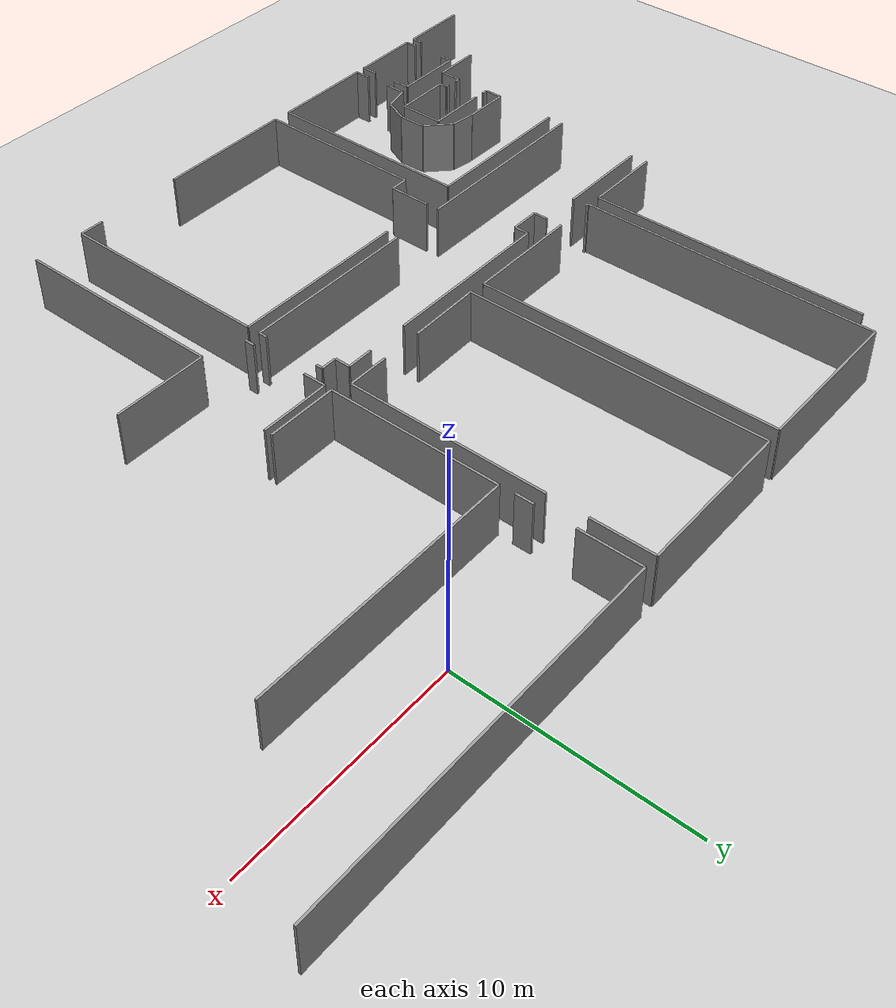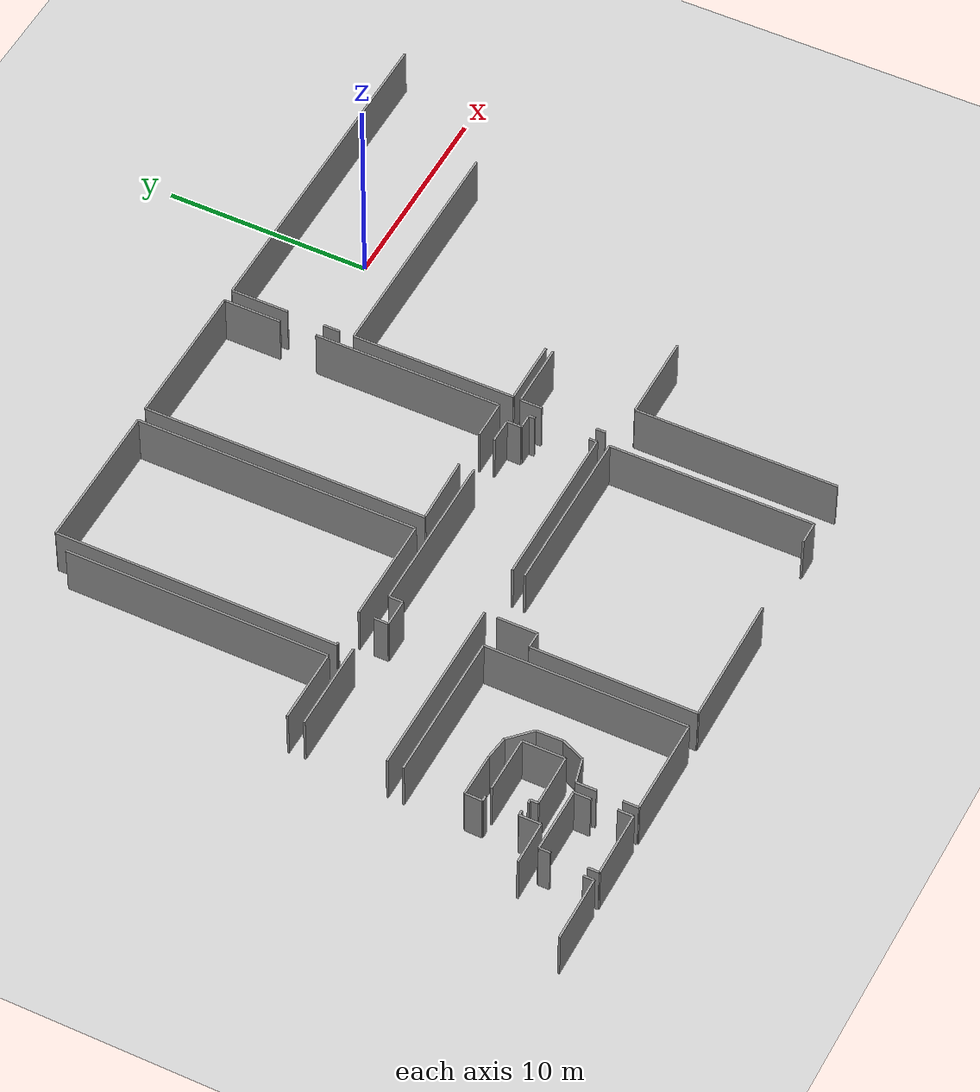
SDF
<sdf version="1.6">
 <world name="default">
  <model name="ground_plane">
   <static>1</static>
   <link name="link">
    <collision name="collision">
     <geometry><plane><normal>0 0 1</normal><size>100 100</size></plane></geometry>
     <surface><friction><ode><mu>100</mu><mu2>50</mu2></ode></friction></surface>
    </collision>
    <visual name="visual">
     <cast_shadows>0</cast_shadows>
     <geometry><plane><normal>0 0 1</normal><size>100 100</size></plane></geometry>
     <material>
      <script><uri>file://media/materials/scripts/gazebo.material</uri><name>Gazebo/Grey</name></script>
     </material>
    </visual>
   </link>
  </model>
  <model name="0510035342_A_40_1_101">
   <static>1</static>
   <link name="Wall_46">
    <collision name="Wall_46_Collision">
     <geometry><box><size>4.43487757797 0.1 2.5</size></box></geometry>
     <pose>2.21743878899 0 1.25 0 0 0</pose>
    </collision>
    <visual name="Wall_46_Visual">
     <pose>2.21743878899 0 1.25 0 0 0</pose>
     <geometry><box><size>4.43487757797 0.1 2.5</size></box></geometry>
     <material>
      <script><uri>file://media/materials/scripts/gazebo.material</uri><name>Gazebo/Grey</name></script>
      <ambient>1 1 1 1</ambient>
     </material>
    </visual>
    <pose>89.5682210708 -36.1292288936 0 0 0 0.0</pose>
   </link>
   <link name="Wall_47">
    <collision name="Wall_47_Collision">
     <geometry><box><size>0.667987402215 0.1 2.5</size></box></geometry>
     <pose>0.333993701107 0 1.25 0 0 0</pose>
    </collision>
    <visual name="Wall_47_Visual">
     <pose>0.333993701107 0 1.25 0 0 0</pose>
     <geometry><box><size>0.667987402215 0.1 2.5</size></box></geometry>
     <material>
      <script><uri>file://media/materials/scripts/gazebo.material</uri><name>Gazebo/Grey</name></script>
      <ambient>1 1 1 1</ambient>
     </material>
    </visual>
    <pose>95.8925124454 -36.1292288936 0 0 0 -1.57079632679</pose>
   </link>
   <link name="Wall_48">
    <collision name="Wall_48_Collision">
     <geometry><box><size>1.35223001118 0.1 2.5</size></box></geometry>
     <pose>0.676115005588 0 1.25 0 0 0</pose>
    </collision>
    <visual name="Wall_48_Visual">
     <pose>0.676115005588 0 1.25 0 0 0</pose>
     <geometry><box><size>1.35223001118 0.1 2.5</size></box></geometry>
     <material>
      <script><uri>file://media/materials/scripts/gazebo.material</uri><name>Gazebo/Grey</name></script>
      <ambient>1 1 1 1</ambient>
     </material>
    </visual>
    <pose>95.8925124454 -36.7972162958 0 0 0 0.0</pose>
   </link>
   <link name="Wall_49">
    <collision name="Wall_49_Collision">
     <geometry><box><size>0.667987402215 0.1 2.5</size></box></geometry>
     <pose>0.333993701107 0 1.25 0 0 0</pose>
    </collision>
    <visual name="Wall_49_Visual">
     <pose>0.333993701107 0 1.25 0 0 0</pose>
     <geometry><box><size>0.667987402215 0.1 2.5</size></box></geometry>
     <material>
      <script><uri>file://media/materials/scripts/gazebo.material</uri><name>Gazebo/Grey</name></script>
      <ambient>1 1 1 1</ambient>
     </material>
    </visual>
    <pose>97.2447424566 -36.7972162958 0 0 0 1.57079632679</pose>
   </link>
   <link name="Wall_50">
    <collision name="Wall_50_Collision">
     <geometry><box><size>7.99933963223 0.1 2.5</size></box></geometry>
     <pose>3.99966981611 0 1.25 0 0 0</pose>
    </collision>
    <visual name="Wall_50_Visual">
     <pose>3.99966981611 0 1.25 0 0 0</pose>
     <geometry><box><size>7.99933963223 0.1 2.5</size></box></geometry>
     <material>
      <script><uri>file://media/materials/scripts/gazebo.material</uri><name>Gazebo/Grey</name></script>
      <ambient>1 1 1 1</ambient>
     </material>
    </visual>
    <pose>97.2447424566 -36.1292288936 0 0 0 0.0</pose>
   </link>
   <link name="Wall_51">
    <collision name="Wall_51_Collision">
     <geometry><box><size>1.21990246876 0.1 2.5</size></box></geometry>
     <pose>0.60995123438 0 1.25 0 0 0</pose>
    </collision>
    <visual name="Wall_51_Visual">
     <pose>0.60995123438 0 1.25 0 0 0</pose>
     <geometry><box><size>1.21990246876 0.1 2.5</size></box></geometry>
     <material>
      <script><uri>file://media/materials/scripts/gazebo.material</uri><name>Gazebo/Grey</name></script>
      <ambient>1 1 1 1</ambient>
     </material>
    </visual>
    <pose>107.178959667 -36.1292288936 0 0 0 0.0</pose>
   </link>
   <link name="Wall_52">
    <collision name="Wall_52_Collision">
     <geometry><box><size>0.714467134004 0.1 2.5</size></box></geometry>
     <pose>0.357233567002 0 1.25 0 0 0</pose>
    </collision>
    <visual name="Wall_52_Visual">
     <pose>0.357233567002 0 1.25 0 0 0</pose>
     <geometry><box><size>0.714467134004 0.1 2.5</size></box></geometry>
     <material>
      <script><uri>file://media/materials/scripts/gazebo.material</uri><name>Gazebo/Grey</name></script>
      <ambient>1 1 1 1</ambient>
     </material>
    </visual>
    <pose>108.398862136 -36.1292288936 0 0 0 -1.57079632679</pose>
   </link>
   <link name="Wall_53">
    <collision name="Wall_53_Collision">
     <geometry><box><size>0.726150563852 0.1 2.5</size></box></geometry>
     <pose>0.363075281926 0 1.25 0 0 0</pose>
    </collision>
    <visual name="Wall_53_Visual">
     <pose>0.363075281926 0 1.25 0 0 0</pose>
     <geometry><box><size>0.726150563852 0.1 2.5</size></box></geometry>
     <material>
      <script><uri>file://media/materials/scripts/gazebo.material</uri><name>Gazebo/Grey</name></script>
      <ambient>1 1 1 1</ambient>
     </material>
    </visual>
    <pose>108.398862136 -36.8436960276 0 0 0 0.0</pose>
   </link>
   <link name="Wall_54">
    <collision name="Wall_54_Collision">
     <geometry><box><size>0.305039114091 0.1 2.5</size></box></geometry>
     <pose>0.152519557046 0 1.25 0 0 0</pose>
    </collision>
    <visual name="Wall_54_Visual">
     <pose>0.152519557046 0 1.25 0 0 0</pose>
     <geometry><box><size>0.305039114091 0.1 2.5</size></box></geometry>
     <material>
      <script><uri>file://media/materials/scripts/gazebo.material</uri><name>Gazebo/Grey</name></script>
      <ambient>1 1 1 1</ambient>
     </material>
    </visual>
    <pose>109.125012699 -36.8436960276 0 0 0 -1.57079632679</pose>
   </link>
   <link name="Wall_55">
    <collision name="Wall_55_Collision">
     <geometry><box><size>0.368028040232 0.1 2.5</size></box></geometry>
     <pose>0.184014020116 0 1.25 0 0 0</pose>
    </collision>
    <visual name="Wall_55_Visual">
     <pose>0.184014020116 0 1.25 0 0 0</pose>
     <geometry><box><size>0.368028040232 0.1 2.5</size></box></geometry>
     <material>
      <script><uri>file://media/materials/scripts/gazebo.material</uri><name>Gazebo/Grey</name></script>
      <ambient>1 1 1 1</ambient>
     </material>
    </visual>
    <pose>109.125012699 -39.7866504115 0 0 0 -1.57079632679</pose>
   </link>
   <link name="Wall_56">
    <collision name="Wall_56_Collision">
     <geometry><box><size>8.19338616276 0.1 2.5</size></box></geometry>
     <pose>4.09669308138 0 1.25 0 0 0</pose>
    </collision>
    <visual name="Wall_56_Visual">
     <pose>4.09669308138 0 1.25 0 0 0</pose>
     <geometry><box><size>8.19338616276 0.1 2.5</size></box></geometry>
     <material>
      <script><uri>file://media/materials/scripts/gazebo.material</uri><name>Gazebo/Grey</name></script>
      <ambient>1 1 1 1</ambient>
     </material>
    </visual>
    <pose>109.125012699 -40.1546784517 0 0 0 3.14159265359</pose>
   </link>
   <link name="Wall_57">
    <collision name="Wall_57_Collision">
     <geometry><box><size>8.97439804938 0.1 2.5</size></box></geometry>
     <pose>4.48719902469 0 1.25 0 0 0</pose>
    </collision>
    <visual name="Wall_57_Visual">
     <pose>4.48719902469 0 1.25 0 0 0</pose>
     <geometry><box><size>8.97439804938 0.1 2.5</size></box></geometry>
     <material>
      <script><uri>file://media/materials/scripts/gazebo.material</uri><name>Gazebo/Grey</name></script>
      <ambient>1 1 1 1</ambient>
     </material>
    </visual>
    <pose>98.3061566596 -40.1546784517 0 0 0 3.14159265359</pose>
   </link>
   <link name="Wall_67">
    <collision name="Wall_67_Collision">
     <geometry><box><size>12.7064919232 0.1 2.5</size></box></geometry>
     <pose>6.3532459616 0 1.25 0 0 0</pose>
    </collision>
    <visual name="Wall_67_Visual">
     <pose>6.3532459616 0 1.25 0 0 0</pose>
     <geometry><box><size>12.7064919232 0.1 2.5</size></box></geometry>
     <material>
      <script><uri>file://media/materials/scripts/gazebo.material</uri><name>Gazebo/Grey</name></script>
      <ambient>1 1 1 1</ambient>
     </material>
    </visual>
    <pose>93.2032916794 -22.6414710962 0 0 0 -1.57079632679</pose>
   </link>
   <link name="Wall_68">
    <collision name="Wall_68_Collision">
     <geometry><box><size>3.66834298486 0.1 2.5</size></box></geometry>
     <pose>1.83417149243 0 1.25 0 0 0</pose>
    </collision>
    <visual name="Wall_68_Visual">
     <pose>1.83417149243 0 1.25 0 0 0</pose>
     <geometry><box><size>3.66834298486 0.1 2.5</size></box></geometry>
     <material>
      <script><uri>file://media/materials/scripts/gazebo.material</uri><name>Gazebo/Grey</name></script>
      <ambient>1 1 1 1</ambient>
     </material>
    </visual>
    <pose>93.2032916794 -35.3479630194 0 0 0 3.14159265359</pose>
   </link>
   <link name="Wall_70">
    <collision name="Wall_70_Collision">
     <geometry><box><size>13.6556436046 0.1 2.5</size></box></geometry>
     <pose>6.8278218023 0 1.25 0 0 0</pose>
    </collision>
    <visual name="Wall_70_Visual">
     <pose>6.8278218023 0 1.25 0 0 0</pose>
     <geometry><box><size>13.6556436046 0.1 2.5</size></box></geometry>
     <material>
      <script><uri>file://media/materials/scripts/gazebo.material</uri><name>Gazebo/Grey</name></script>
      <ambient>1 1 1 1</ambient>
     </material>
    </visual>
    <pose>93.8880422635 -35.4112059332 0 0 0 1.57079632679</pose>
   </link>
   <link name="Wall_71">
    <collision name="Wall_71_Collision">
     <geometry><box><size>7.24118663009 0.1 2.5</size></box></geometry>
     <pose>3.62059331505 0 1.25 0 0 0</pose>
    </collision>
    <visual name="Wall_71_Visual">
     <pose>3.62059331505 0 1.25 0 0 0</pose>
     <geometry><box><size>7.24118663009 0.1 2.5</size></box></geometry>
     <material>
      <script><uri>file://media/materials/scripts/gazebo.material</uri><name>Gazebo/Grey</name></script>
      <ambient>1 1 1 1</ambient>
     </material>
    </visual>
    <pose>93.8880422635 -21.7555623286 0 0 0 0.0</pose>
   </link>
   <link name="Wall_72">
    <collision name="Wall_72_Collision">
     <geometry><box><size>13.637356497 0.1 2.5</size></box></geometry>
     <pose>6.8186782485 0 1.25 0 0 0</pose>
    </collision>
    <visual name="Wall_72_Visual">
     <pose>6.8186782485 0 1.25 0 0 0</pose>
     <geometry><box><size>13.637356497 0.1 2.5</size></box></geometry>
     <material>
      <script><uri>file://media/materials/scripts/gazebo.material</uri><name>Gazebo/Grey</name></script>
      <ambient>1 1 1 1</ambient>
     </material>
    </visual>
    <pose>101.129228894 -21.7555623286 0 0 0 -1.57079632679</pose>
   </link>
   <link name="Wall_73">
    <collision name="Wall_73_Collision">
     <geometry><box><size>5.24738392766 0.1 2.5</size></box></geometry>
     <pose>2.62369196383 0 1.25 0 0 0</pose>
    </collision>
    <visual name="Wall_73_Visual">
     <pose>2.62369196383 0 1.25 0 0 0</pose>
     <geometry><box><size>5.24738392766 0.1 2.5</size></box></geometry>
     <material>
      <script><uri>file://media/materials/scripts/gazebo.material</uri><name>Gazebo/Grey</name></script>
      <ambient>1 1 1 1</ambient>
     </material>
    </visual>
    <pose>101.129228894 -35.3929188256 0 0 0 3.14159265359</pose>
   </link>
   <link name="Wall_74">
    <collision name="Wall_74_Collision">
     <geometry><box><size>0.130063727189 0.1 2.5</size></box></geometry>
     <pose>0.0650318635943 0 1.25 0 0 0</pose>
    </collision>
    <visual name="Wall_74_Visual">
     <pose>0.0650318635943 0 1.25 0 0 0</pose>
     <geometry><box><size>0.130063727189 0.1 2.5</size></box></geometry>
     <material>
      <script><uri>file://media/materials/scripts/gazebo.material</uri><name>Gazebo/Grey</name></script>
      <ambient>1 1 1 1</ambient>
     </material>
    </visual>
    <pose>94.0168139795 -35.3929188256 0 0 0 -3.00052409921</pose>
   </link>
   <link name="Wall_75">
    <collision name="Wall_75_Collision">
     <geometry><box><size>13.7445392665 0.1 2.5</size></box></geometry>
     <pose>6.87226963324 0 1.25 0 0 0</pose>
    </collision>
    <visual name="Wall_75_Visual">
     <pose>6.87226963324 0 1.25 0 0 0</pose>
     <geometry><box><size>13.7445392665 0.1 2.5</size></box></geometry>
     <material>
      <script><uri>file://media/materials/scripts/gazebo.material</uri><name>Gazebo/Grey</name></script>
      <ambient>1 1 1 1</ambient>
     </material>
    </visual>
    <pose>101.87849233 -35.4640353551 0 0 0 1.57079632679</pose>
   </link>
   <link name="Wall_76">
    <collision name="Wall_76_Collision">
     <geometry><box><size>7.21883572082 0.1 2.5</size></box></geometry>
     <pose>3.60941786041 0 1.25 0 0 0</pose>
    </collision>
    <visual name="Wall_76_Visual">
     <pose>3.60941786041 0 1.25 0 0 0</pose>
     <geometry><box><size>7.21883572082 0.1 2.5</size></box></geometry>
     <material>
      <script><uri>file://media/materials/scripts/gazebo.material</uri><name>Gazebo/Grey</name></script>
      <ambient>1 1 1 1</ambient>
     </material>
    </visual>
    <pose>101.87849233 -21.7194960886 0 0 0 0.0</pose>
   </link>
   <link name="Wall_77">
    <collision name="Wall_77_Collision">
     <geometry><box><size>2.80402316367 0.1 2.5</size></box></geometry>
     <pose>1.40201158183 0 1.25 0 0 0</pose>
    </collision>
    <visual name="Wall_77_Visual">
     <pose>1.40201158183 0 1.25 0 0 0</pose>
     <geometry><box><size>2.80402316367 0.1 2.5</size></box></geometry>
     <material>
      <script><uri>file://media/materials/scripts/gazebo.material</uri><name>Gazebo/Grey</name></script>
      <ambient>1 1 1 1</ambient>
     </material>
    </visual>
    <pose>109.09732805 -21.7194960886 0 0 0 -1.57079632679</pose>
   </link>
   <link name="Wall_78">
    <collision name="Wall_78_Collision">
     <geometry><box><size>9.07370720309 0.1 2.5</size></box></geometry>
     <pose>4.53685360154 0 1.25 0 0 0</pose>
    </collision>
    <visual name="Wall_78_Visual">
     <pose>4.53685360154 0 1.25 0 0 0</pose>
     <geometry><box><size>9.07370720309 0.1 2.5</size></box></geometry>
     <material>
      <script><uri>file://media/materials/scripts/gazebo.material</uri><name>Gazebo/Grey</name></script>
      <ambient>1 1 1 1</ambient>
     </material>
    </visual>
    <pose>109.09732805 -26.3286091639 0 0 0 -1.57079632679</pose>
   </link>
   <link name="Wall_79">
    <collision name="Wall_79_Collision">
     <geometry><box><size>1.92928985066 0.1 2.5</size></box></geometry>
     <pose>0.964644925328 0 1.25 0 0 0</pose>
    </collision>
    <visual name="Wall_79_Visual">
     <pose>0.964644925328 0 1.25 0 0 0</pose>
     <geometry><box><size>1.92928985066 0.1 2.5</size></box></geometry>
     <material>
      <script><uri>file://media/materials/scripts/gazebo.material</uri><name>Gazebo/Grey</name></script>
      <ambient>1 1 1 1</ambient>
     </material>
    </visual>
    <pose>109.09732805 -35.402316367 0 0 0 3.14159265359</pose>
   </link>
   <link name="Wall_80">
    <collision name="Wall_80_Collision">
     <geometry><box><size>3.37707525745 0.1 2.5</size></box></geometry>
     <pose>1.68853762873 0 1.25 0 0 0</pose>
    </collision>
    <visual name="Wall_80_Visual">
     <pose>1.68853762873 0 1.25 0 0 0</pose>
     <geometry><box><size>3.37707525745 0.1 2.5</size></box></geometry>
     <material>
      <script><uri>file://media/materials/scripts/gazebo.material</uri><name>Gazebo/Grey</name></script>
      <ambient>1 1 1 1</ambient>
     </material>
    </visual>
    <pose>105.255003556 -35.402316367 0 0 0 -3.12331576614</pose>
   </link>
   <link name="Wall_81">
    <collision name="Wall_81_Collision">
     <geometry><box><size>7.89368078838 0.1 2.5</size></box></geometry>
     <pose>3.94684039419 0 1.25 0 0 0</pose>
    </collision>
    <visual name="Wall_81_Visual">
     <pose>3.94684039419 0 1.25 0 0 0</pose>
     <geometry><box><size>7.89368078838 0.1 2.5</size></box></geometry>
     <material>
      <script><uri>file://media/materials/scripts/gazebo.material</uri><name>Gazebo/Grey</name></script>
      <ambient>1 1 1 1</ambient>
     </material>
    </visual>
    <pose>97.4936503099 -50.5694402113 0 0 0 1.57079632679</pose>
   </link>
   <link name="Wall_82">
    <collision name="Wall_82_Collision">
     <geometry><box><size>0.80310880829 0.1 2.5</size></box></geometry>
     <pose>0.401554404145 0 1.25 0 0 0</pose>
    </collision>
    <visual name="Wall_82_Visual">
     <pose>0.401554404145 0 1.25 0 0 0</pose>
     <geometry><box><size>0.80310880829 0.1 2.5</size></box></geometry>
     <material>
      <script><uri>file://media/materials/scripts/gazebo.material</uri><name>Gazebo/Grey</name></script>
      <ambient>1 1 1 1</ambient>
     </material>
    </visual>
    <pose>97.4936503099 -42.6757594229 0 0 0 0.0</pose>
   </link>
   <link name="Wall_83">
    <collision name="Wall_83_Collision">
     <geometry><box><size>1.92065427207 0.1 2.5</size></box></geometry>
     <pose>0.960327136036 0 1.25 0 0 0</pose>
    </collision>
    <visual name="Wall_83_Visual">
     <pose>0.960327136036 0 1.25 0 0 0</pose>
     <geometry><box><size>1.92065427207 0.1 2.5</size></box></geometry>
     <material>
      <script><uri>file://media/materials/scripts/gazebo.material</uri><name>Gazebo/Grey</name></script>
      <ambient>1 1 1 1</ambient>
     </material>
    </visual>
    <pose>98.2967591182 -42.6757594229 0 0 0 1.57079632679</pose>
   </link>
   <link name="Wall_84">
    <collision name="Wall_84_Collision">
     <geometry><box><size>8.25002539876 0.1 2.5</size></box></geometry>
     <pose>4.12501269938 0 1.25 0 0 0</pose>
    </collision>
    <visual name="Wall_84_Visual">
     <pose>4.12501269938 0 1.25 0 0 0</pose>
     <geometry><box><size>8.25002539876 0.1 2.5</size></box></geometry>
     <material>
      <script><uri>file://media/materials/scripts/gazebo.material</uri><name>Gazebo/Grey</name></script>
      <ambient>1 1 1 1</ambient>
     </material>
    </visual>
    <pose>100.901909987 -40.7551051509 0 0 0 0.0</pose>
   </link>
   <link name="Wall_85">
    <collision name="Wall_85_Collision">
     <geometry><box><size>9.78639642385 0.1 2.5</size></box></geometry>
     <pose>4.89319821193 0 1.25 0 0 0</pose>
    </collision>
    <visual name="Wall_85_Visual">
     <pose>4.89319821193 0 1.25 0 0 0</pose>
     <geometry><box><size>9.78639642385 0.1 2.5</size></box></geometry>
     <material>
      <script><uri>file://media/materials/scripts/gazebo.material</uri><name>Gazebo/Grey</name></script>
      <ambient>1 1 1 1</ambient>
     </material>
    </visual>
    <pose>109.151935386 -40.7551051509 0 0 0 -1.57079632679</pose>
   </link>
   <link name="Wall_86">
    <collision name="Wall_86_Collision">
     <geometry><box><size>1.11906938941 0.1 2.5</size></box></geometry>
     <pose>0.559534694707 0 1.25 0 0 0</pose>
    </collision>
    <visual name="Wall_86_Visual">
     <pose>0.559534694707 0 1.25 0 0 0</pose>
     <geometry><box><size>1.11906938941 0.1 2.5</size></box></geometry>
     <material>
      <script><uri>file://media/materials/scripts/gazebo.material</uri><name>Gazebo/Grey</name></script>
      <ambient>1 1 1 1</ambient>
     </material>
    </visual>
    <pose>109.151935386 -50.5415015747 0 0 0 3.14159265359</pose>
   </link>
   <link name="Wall_87">
    <collision name="Wall_87_Collision">
     <geometry><box><size>6.4145178186 0.1 2.5</size></box></geometry>
     <pose>3.2072589093 0 1.25 0 0 0</pose>
    </collision>
    <visual name="Wall_87_Visual">
     <pose>3.2072589093 0 1.25 0 0 0</pose>
     <geometry><box><size>6.4145178186 0.1 2.5</size></box></geometry>
     <material>
      <script><uri>file://media/materials/scripts/gazebo.material</uri><name>Gazebo/Grey</name></script>
      <ambient>1 1 1 1</ambient>
     </material>
    </visual>
    <pose>103.908107284 -50.5415015747 0 0 0 -3.13723710798</pose>
   </link>
   <link name="Wall_91">
    <collision name="Wall_91_Collision">
     <geometry><box><size>7.36157675505 0.1 2.5</size></box></geometry>
     <pose>3.68078837753 0 1.25 0 0 0</pose>
    </collision>
    <visual name="Wall_91_Visual">
     <pose>3.68078837753 0 1.25 0 0 0</pose>
     <geometry><box><size>7.36157675505 0.1 2.5</size></box></geometry>
     <material>
      <script><uri>file://media/materials/scripts/gazebo.material</uri><name>Gazebo/Grey</name></script>
      <ambient>1 1 1 1</ambient>
     </material>
    </visual>
    <pose>89.3127095398 -40.92172102 0 0 0 0.0</pose>
   </link>
   <link name="Wall_92">
    <collision name="Wall_92_Collision">
     <geometry><box><size>9.60301737275 0.1 2.5</size></box></geometry>
     <pose>4.80150868638 0 1.25 0 0 0</pose>
    </collision>
    <visual name="Wall_92_Visual">
     <pose>4.80150868638 0 1.25 0 0 0</pose>
     <geometry><box><size>9.60301737275 0.1 2.5</size></box></geometry>
     <material>
      <script><uri>file://media/materials/scripts/gazebo.material</uri><name>Gazebo/Grey</name></script>
      <ambient>1 1 1 1</ambient>
     </material>
    </visual>
    <pose>96.6742862948 -40.92172102 0 0 0 -1.57079632679</pose>
   </link>
   <link name="Wall_93">
    <collision name="Wall_93_Collision">
     <geometry><box><size>4.77369704358 0.1 2.5</size></box></geometry>
     <pose>2.38684852179 0 1.25 0 0 0</pose>
    </collision>
    <visual name="Wall_93_Visual">
     <pose>2.38684852179 0 1.25 0 0 0</pose>
     <geometry><box><size>4.77369704358 0.1 2.5</size></box></geometry>
     <material>
      <script><uri>file://media/materials/scripts/gazebo.material</uri><name>Gazebo/Grey</name></script>
      <ambient>1 1 1 1</ambient>
     </material>
    </visual>
    <pose>96.6742862948 -50.5247383928 0 0 0 3.14159265359</pose>
   </link>
   <link name="Wall_94">
    <collision name="Wall_94_Collision">
     <geometry><box><size>0.734786142436 0.1 2.5</size></box></geometry>
     <pose>0.367393071218 0 1.25 0 0 0</pose>
    </collision>
    <visual name="Wall_94_Visual">
     <pose>0.367393071218 0 1.25 0 0 0</pose>
     <geometry><box><size>0.734786142436 0.1 2.5</size></box></geometry>
     <material>
      <script><uri>file://media/materials/scripts/gazebo.material</uri><name>Gazebo/Grey</name></script>
      <ambient>1 1 1 1</ambient>
     </material>
    </visual>
    <pose>91.9005892512 -50.5247383928 0 0 0 1.57079632679</pose>
   </link>
   <link name="Wall_95">
    <collision name="Wall_95_Collision">
     <geometry><box><size>0.967438788987 0.1 2.5</size></box></geometry>
     <pose>0.483719394494 0 1.25 0 0 0</pose>
    </collision>
    <visual name="Wall_95_Visual">
     <pose>0.483719394494 0 1.25 0 0 0</pose>
     <geometry><box><size>0.967438788987 0.1 2.5</size></box></geometry>
     <material>
      <script><uri>file://media/materials/scripts/gazebo.material</uri><name>Gazebo/Grey</name></script>
      <ambient>1 1 1 1</ambient>
     </material>
    </visual>
    <pose>91.9005892512 -48.5863049883 0 0 0 1.57079632679</pose>
   </link>
   <link name="Wall_96">
    <collision name="Wall_96_Collision">
     <geometry><box><size>1.25562103915 0.1 2.5</size></box></geometry>
     <pose>0.627810519574 0 1.25 0 0 0</pose>
    </collision>
    <visual name="Wall_96_Visual">
     <pose>0.627810519574 0 1.25 0 0 0</pose>
     <geometry><box><size>1.25562103915 0.1 2.5</size></box></geometry>
     <material>
      <script><uri>file://media/materials/scripts/gazebo.material</uri><name>Gazebo/Grey</name></script>
      <ambient>1 1 1 1</ambient>
     </material>
    </visual>
    <pose>91.9005892512 -47.6188661993 0 0 0 0.241642562076</pose>
   </link>
   <link name="Wall_97">
    <collision name="Wall_97_Collision">
     <geometry><box><size>1.22614644015 0.1 2.5</size></box></geometry>
     <pose>0.613073220075 0 1.25 0 0 0</pose>
    </collision>
    <visual name="Wall_97_Visual">
     <pose>0.613073220075 0 1.25 0 0 0</pose>
     <geometry><box><size>1.22614644015 0.1 2.5</size></box></geometry>
     <material>
      <script><uri>file://media/materials/scripts/gazebo.material</uri><name>Gazebo/Grey</name></script>
      <ambient>1 1 1 1</ambient>
     </material>
    </visual>
    <pose>93.1197297572 -47.3183988621 0 0 0 1.14977471347</pose>
   </link>
   <link name="Wall_98">
    <collision name="Wall_98_Collision">
     <geometry><box><size>1.25286154251 0.1 2.5</size></box></geometry>
     <pose>0.626430771256 0 1.25 0 0 0</pose>
    </collision>
    <visual name="Wall_98_Visual">
     <pose>0.626430771256 0 1.25 0 0 0</pose>
     <geometry><box><size>1.25286154251 0.1 2.5</size></box></geometry>
     <material>
      <script><uri>file://media/materials/scripts/gazebo.material</uri><name>Gazebo/Grey</name></script>
      <ambient>1 1 1 1</ambient>
     </material>
    </visual>
    <pose>93.6208473027 -46.1993294727 0 0 0 1.59755935317</pose>
   </link>
   <link name="Wall_99">
    <collision name="Wall_99_Collision">
     <geometry><box><size>1.4173901376 0.1 2.5</size></box></geometry>
     <pose>0.708695068799 0 1.25 0 0 0</pose>
    </collision>
    <visual name="Wall_99_Visual">
     <pose>0.708695068799 0 1.25 0 0 0</pose>
     <geometry><box><size>1.4173901376 0.1 2.5</size></box></geometry>
     <material>
      <script><uri>file://media/materials/scripts/gazebo.material</uri><name>Gazebo/Grey</name></script>
      <ambient>1 1 1 1</ambient>
     </material>
    </visual>
    <pose>93.5873209387 -44.9469165905 0 0 0 2.37279415658</pose>
   </link>
   <link name="Wall_100">
    <collision name="Wall_100_Collision">
     <geometry><box><size>1.12884007598 0.1 2.5</size></box></geometry>
     <pose>0.564420037991 0 1.25 0 0 0</pose>
    </collision>
    <visual name="Wall_100_Visual">
     <pose>0.564420037991 0 1.25 0 0 0</pose>
     <geometry><box><size>1.12884007598 0.1 2.5</size></box></geometry>
     <material>
      <script><uri>file://media/materials/scripts/gazebo.material</uri><name>Gazebo/Grey</name></script>
      <ambient>1 1 1 1</ambient>
     </material>
    </visual>
    <pose>92.5685766535 -43.9614446815 0 0 0 3.00822336273</pose>
   </link>
   <link name="Wall_101">
    <collision name="Wall_101_Collision">
     <geometry><box><size>2.15287878501 0.1 2.5</size></box></geometry>
     <pose>1.07643939251 0 1.25 0 0 0</pose>
    </collision>
    <visual name="Wall_101_Visual">
     <pose>1.07643939251 0 1.25 0 0 0</pose>
     <geometry><box><size>2.15287878501 0.1 2.5</size></box></geometry>
     <material>
      <script><uri>file://media/materials/scripts/gazebo.material</uri><name>Gazebo/Grey</name></script>
      <ambient>1 1 1 1</ambient>
     </material>
    </visual>
    <pose>91.4497612517 -43.8113380067 0 0 0 3.13298031344</pose>
   </link>
   <link name="Wall_102">
    <collision name="Wall_102_Collision">
     <geometry><box><size>0.833426260831 0.1 2.5</size></box></geometry>
     <pose>0.416713130416 0 1.25 0 0 0</pose>
    </collision>
    <visual name="Wall_102_Visual">
     <pose>0.416713130416 0 1.25 0 0 0</pose>
     <geometry><box><size>0.833426260831 0.1 2.5</size></box></geometry>
     <material>
      <script><uri>file://media/materials/scripts/gazebo.material</uri><name>Gazebo/Grey</name></script>
      <ambient>1 1 1 1</ambient>
     </material>
    </visual>
    <pose>89.2969623082 -43.7927969115 0 0 0 -1.58572968782</pose>
   </link>
   <link name="Wall_103">
    <collision name="Wall_103_Collision">
     <geometry><box><size>0.278119327305 0.1 2.5</size></box></geometry>
     <pose>0.139059663653 0 1.25 0 0 0</pose>
    </collision>
    <visual name="Wall_103_Visual">
     <pose>0.139059663653 0 1.25 0 0 0</pose>
     <geometry><box><size>0.278119327305 0.1 2.5</size></box></geometry>
     <material>
      <script><uri>file://media/materials/scripts/gazebo.material</uri><name>Gazebo/Grey</name></script>
      <ambient>1 1 1 1</ambient>
     </material>
    </visual>
    <pose>89.2845169156 -44.6261302448 0 0 0 0.00456617831052</pose>
   </link>
   <link name="Wall_104">
    <collision name="Wall_104_Collision">
     <geometry><box><size>0.26033729554 0.1 2.5</size></box></geometry>
     <pose>0.13016864777 0 1.25 0 0 0</pose>
    </collision>
    <visual name="Wall_104_Visual">
     <pose>0.13016864777 0 1.25 0 0 0</pose>
     <geometry><box><size>0.26033729554 0.1 2.5</size></box></geometry>
     <material>
      <script><uri>file://media/materials/scripts/gazebo.material</uri><name>Gazebo/Grey</name></script>
      <ambient>1 1 1 1</ambient>
     </material>
    </visual>
    <pose>89.5626333435 -46.3039723661 0 0 0 3.14159265359</pose>
   </link>
   <link name="Wall_105">
    <collision name="Wall_105_Collision">
     <geometry><box><size>1.01061668191 0.1 2.5</size></box></geometry>
     <pose>0.505308340953 0 1.25 0 0 0</pose>
    </collision>
    <visual name="Wall_105_Visual">
     <pose>0.505308340953 0 1.25 0 0 0</pose>
     <geometry><box><size>1.01061668191 0.1 2.5</size></box></geometry>
     <material>
      <script><uri>file://media/materials/scripts/gazebo.material</uri><name>Gazebo/Grey</name></script>
      <ambient>1 1 1 1</ambient>
     </material>
    </visual>
    <pose>89.302296048 -46.3039723661 0 0 0 -1.57079632679</pose>
   </link>
   <link name="Wall_106">
    <collision name="Wall_106_Collision">
     <geometry><box><size>2.17346222977 0.1 2.5</size></box></geometry>
     <pose>1.08673111488 0 1.25 0 0 0</pose>
    </collision>
    <visual name="Wall_106_Visual">
     <pose>1.08673111488 0 1.25 0 0 0</pose>
     <geometry><box><size>2.17346222977 0.1 2.5</size></box></geometry>
     <material>
      <script><uri>file://media/materials/scripts/gazebo.material</uri><name>Gazebo/Grey</name></script>
      <ambient>1 1 1 1</ambient>
     </material>
    </visual>
    <pose>89.302296048 -47.3145890481 0 0 0 -3.13247756188</pose>
   </link>
   <link name="Wall_107">
    <collision name="Wall_107_Collision">
     <geometry><box><size>0.446256222696 0.1 2.5</size></box></geometry>
     <pose>0.223128111348 0 1.25 0 0 0</pose>
    </collision>
    <visual name="Wall_107_Visual">
     <pose>0.223128111348 0 1.25 0 0 0</pose>
     <geometry><box><size>0.446256222696 0.1 2.5</size></box></geometry>
     <material>
      <script><uri>file://media/materials/scripts/gazebo.material</uri><name>Gazebo/Grey</name></script>
      <ambient>1 1 1 1</ambient>
     </material>
    </visual>
    <pose>109.789698263 -40.2524636798 0 0 0 1.57079632679</pose>
   </link>
   <link name="Wall_108">
    <collision name="Wall_108_Collision">
     <geometry><box><size>1.05633445088 0.1 2.5</size></box></geometry>
     <pose>0.528167225439 0 1.25 0 0 0</pose>
    </collision>
    <visual name="Wall_108_Visual">
     <pose>0.528167225439 0 1.25 0 0 0</pose>
     <geometry><box><size>1.05633445088 0.1 2.5</size></box></geometry>
     <material>
      <script><uri>file://media/materials/scripts/gazebo.material</uri><name>Gazebo/Grey</name></script>
      <ambient>1 1 1 1</ambient>
     </material>
    </visual>
    <pose>109.789698263 -37.1604185716 0 0 0 1.57079632679</pose>
   </link>
   <link name="Wall_109">
    <collision name="Wall_109_Collision">
     <geometry><box><size>3.20329167937 0.1 2.5</size></box></geometry>
     <pose>1.60164583968 0 1.25 0 0 0</pose>
    </collision>
    <visual name="Wall_109_Visual">
     <pose>1.60164583968 0 1.25 0 0 0</pose>
     <geometry><box><size>3.20329167937 0.1 2.5</size></box></geometry>
     <material>
      <script><uri>file://media/materials/scripts/gazebo.material</uri><name>Gazebo/Grey</name></script>
      <ambient>1 1 1 1</ambient>
     </material>
    </visual>
    <pose>109.789698263 -36.1040841207 0 0 0 0.0</pose>
   </link>
   <link name="Wall_131">
    <collision name="Wall_131_Collision">
     <geometry><box><size>0.366250126994 0.1 2.5</size></box></geometry>
     <pose>0.183125063497 0 1.25 0 0 0</pose>
    </collision>
    <visual name="Wall_131_Visual">
     <pose>0.183125063497 0 1.25 0 0 0</pose>
     <geometry><box><size>0.366250126994 0.1 2.5</size></box></geometry>
     <material>
      <script><uri>file://media/materials/scripts/gazebo.material</uri><name>Gazebo/Grey</name></script>
      <ambient>1 1 1 1</ambient>
     </material>
    </visual>
    <pose>90.2189373159 -46.7222899523 0 0 0 1.57079632679</pose>
   </link>
   <link name="Wall_132">
    <collision name="Wall_132_Collision">
     <geometry><box><size>0.189474753632 0.1 2.5</size></box></geometry>
     <pose>0.094737376816 0 1.25 0 0 0</pose>
    </collision>
    <visual name="Wall_132_Visual">
     <pose>0.094737376816 0 1.25 0 0 0</pose>
     <geometry><box><size>0.189474753632 0.1 2.5</size></box></geometry>
     <material>
      <script><uri>file://media/materials/scripts/gazebo.material</uri><name>Gazebo/Grey</name></script>
      <ambient>1 1 1 1</ambient>
     </material>
    </visual>
    <pose>90.2189373159 -46.3560398253 0 0 0 3.14159265359</pose>
   </link>
   <link name="Wall_133">
    <collision name="Wall_133_Collision">
     <geometry><box><size>2.80199126283 0.1 2.5</size></box></geometry>
     <pose>1.40099563141 0 1.25 0 0 0</pose>
    </collision>
    <visual name="Wall_133_Visual">
     <pose>1.40099563141 0 1.25 0 0 0</pose>
     <geometry><box><size>2.80199126283 0.1 2.5</size></box></geometry>
     <material>
      <script><uri>file://media/materials/scripts/gazebo.material</uri><name>Gazebo/Grey</name></script>
      <ambient>1 1 1 1</ambient>
     </material>
    </visual>
    <pose>90.0294625622 -44.6563547699 0 0 0 0.0</pose>
   </link>
   <link name="Wall_134">
    <collision name="Wall_134_Collision">
     <geometry><box><size>2.03317078127 0.1 2.5</size></box></geometry>
     <pose>1.01658539063 0 1.25 0 0 0</pose>
    </collision>
    <visual name="Wall_134_Visual">
     <pose>1.01658539063 0 1.25 0 0 0</pose>
     <geometry><box><size>2.03317078127 0.1 2.5</size></box></geometry>
     <material>
      <script><uri>file://media/materials/scripts/gazebo.material</uri><name>Gazebo/Grey</name></script>
      <ambient>1 1 1 1</ambient>
     </material>
    </visual>
    <pose>92.8314538251 -44.6563547699 0 0 0 -1.57079632679</pose>
   </link>
   <link name="Wall_135">
    <collision name="Wall_135_Collision">
     <geometry><box><size>2.61272195551 0.1 2.5</size></box></geometry>
     <pose>1.30636097775 0 1.25 0 0 0</pose>
    </collision>
    <visual name="Wall_135_Visual">
     <pose>1.30636097775 0 1.25 0 0 0</pose>
     <geometry><box><size>2.61272195551 0.1 2.5</size></box></geometry>
     <material>
      <script><uri>file://media/materials/scripts/gazebo.material</uri><name>Gazebo/Grey</name></script>
      <ambient>1 1 1 1</ambient>
     </material>
    </visual>
    <pose>92.8314538251 -46.6895255512 0 0 0 -3.12905199275</pose>
   </link>
   <link name="Wall_140">
    <collision name="Wall_140_Collision">
     <geometry><box><size>0.496545768567 0.1 2.5</size></box></geometry>
     <pose>0.248272884283 0 1.25 0 0 0</pose>
    </collision>
    <visual name="Wall_140_Visual">
     <pose>0.248272884283 0 1.25 0 0 0</pose>
     <geometry><box><size>0.496545768567 0.1 2.5</size></box></geometry>
     <material>
      <script><uri>file://media/materials/scripts/gazebo.material</uri><name>Gazebo/Grey</name></script>
      <ambient>1 1 1 1</ambient>
     </material>
    </visual>
    <pose>87.708523824 -50.0208269836 0 0 0 -1.57079632679</pose>
   </link>
   <link name="Wall_141">
    <collision name="Wall_141_Collision">
     <geometry><box><size>3.23690238584 0.1 2.5</size></box></geometry>
     <pose>1.61845119292 0 1.25 0 0 0</pose>
    </collision>
    <visual name="Wall_141_Visual">
     <pose>1.61845119292 0 1.25 0 0 0</pose>
     <geometry><box><size>3.23690238584 0.1 2.5</size></box></geometry>
     <material>
      <script><uri>file://media/materials/scripts/gazebo.material</uri><name>Gazebo/Grey</name></script>
      <ambient>1 1 1 1</ambient>
     </material>
    </visual>
    <pose>87.708523824 -50.5173727522 0 0 0 -3.1343736955</pose>
   </link>
   <link name="Wall_142">
    <collision name="Wall_142_Collision">
     <geometry><box><size>0.531342070507 0.1 2.5</size></box></geometry>
     <pose>0.265671035253 0 1.25 0 0 0</pose>
    </collision>
    <visual name="Wall_142_Visual">
     <pose>0.265671035253 0 1.25 0 0 0</pose>
     <geometry><box><size>0.531342070507 0.1 2.5</size></box></geometry>
     <material>
      <script><uri>file://media/materials/scripts/gazebo.material</uri><name>Gazebo/Grey</name></script>
      <ambient>1 1 1 1</ambient>
     </material>
    </visual>
    <pose>88.1593518236 -50.5448034136 0 0 0 1.57079632679</pose>
   </link>
   <link name="Wall_143">
    <collision name="Wall_143_Collision">
     <geometry><box><size>0.539977649091 0.1 2.5</size></box></geometry>
     <pose>0.269988824545 0 1.25 0 0 0</pose>
    </collision>
    <visual name="Wall_143_Visual">
     <pose>0.269988824545 0 1.25 0 0 0</pose>
     <geometry><box><size>0.539977649091 0.1 2.5</size></box></geometry>
     <material>
      <script><uri>file://media/materials/scripts/gazebo.material</uri><name>Gazebo/Grey</name></script>
      <ambient>1 1 1 1</ambient>
     </material>
    </visual>
    <pose>88.1593518236 -48.3150462257 0 0 0 1.57079632679</pose>
   </link>
   <link name="Wall_144">
    <collision name="Wall_144_Collision">
     <geometry><box><size>3.23834196891 0.1 2.5</size></box></geometry>
     <pose>1.61917098446 0 1.25 0 0 0</pose>
    </collision>
    <visual name="Wall_144_Visual">
     <pose>1.61917098446 0 1.25 0 0 0</pose>
     <geometry><box><size>3.23834196891 0.1 2.5</size></box></geometry>
     <material>
      <script><uri>file://media/materials/scripts/gazebo.material</uri><name>Gazebo/Grey</name></script>
      <ambient>1 1 1 1</ambient>
     </material>
    </visual>
    <pose>88.1593518236 -47.7750685767 0 0 0 0.0</pose>
   </link>
   <link name="Wall_145">
    <collision name="Wall_145_Collision">
     <geometry><box><size>0.803616783501 0.1 2.5</size></box></geometry>
     <pose>0.40180839175 0 1.25 0 0 0</pose>
    </collision>
    <visual name="Wall_145_Visual">
     <pose>0.40180839175 0 1.25 0 0 0</pose>
     <geometry><box><size>0.803616783501 0.1 2.5</size></box></geometry>
     <material>
      <script><uri>file://media/materials/scripts/gazebo.material</uri><name>Gazebo/Grey</name></script>
      <ambient>1 1 1 1</ambient>
     </material>
    </visual>
    <pose>91.3976937925 -47.7750685767 0 0 0 -1.57079632679</pose>
   </link>
   <link name="Wall_146">
    <collision name="Wall_146_Collision">
     <geometry><box><size>0.724880625825 0.1 2.5</size></box></geometry>
     <pose>0.362440312913 0 1.25 0 0 0</pose>
    </collision>
    <visual name="Wall_146_Visual">
     <pose>0.362440312913 0 1.25 0 0 0</pose>
     <geometry><box><size>0.724880625825 0.1 2.5</size></box></geometry>
     <material>
      <script><uri>file://media/materials/scripts/gazebo.material</uri><name>Gazebo/Grey</name></script>
      <ambient>1 1 1 1</ambient>
     </material>
    </visual>
    <pose>91.3976937925 -49.794016052 0 0 0 -1.57079632679</pose>
   </link>
   <link name="Wall_147">
    <collision name="Wall_147_Collision">
     <geometry><box><size>3.2384455942 0.1 2.5</size></box></geometry>
     <pose>1.6192227971 0 1.25 0 0 0</pose>
    </collision>
    <visual name="Wall_147_Visual">
     <pose>1.6192227971 0 1.25 0 0 0</pose>
     <geometry><box><size>3.2384455942 0.1 2.5</size></box></geometry>
     <material>
      <script><uri>file://media/materials/scripts/gazebo.material</uri><name>Gazebo/Grey</name></script>
      <ambient>1 1 1 1</ambient>
     </material>
    </visual>
    <pose>91.3976937925 -50.5188966778 0 0 0 -3.13359282425</pose>
   </link>
   <link name="Wall_148">
    <collision name="Wall_148_Collision">
     <geometry><box><size>0.813268312506 0.1 2.5</size></box></geometry>
     <pose>0.406634156253 0 1.25 0 0 0</pose>
    </collision>
    <visual name="Wall_148_Visual">
     <pose>0.406634156253 0 1.25 0 0 0</pose>
     <geometry><box><size>0.813268312506 0.1 2.5</size></box></geometry>
     <material>
      <script><uri>file://media/materials/scripts/gazebo.material</uri><name>Gazebo/Grey</name></script>
      <ambient>1 1 1 1</ambient>
     </material>
    </visual>
    <pose>109.778522808 -27.1576247079 0 0 0 1.57079632679</pose>
   </link>
   <link name="Wall_149">
    <collision name="Wall_149_Collision">
     <geometry><box><size>2.80249923804 0.1 2.5</size></box></geometry>
     <pose>1.40124961902 0 1.25 0 0 0</pose>
    </collision>
    <visual name="Wall_149_Visual">
     <pose>1.40124961902 0 1.25 0 0 0</pose>
     <geometry><box><size>2.80249923804 0.1 2.5</size></box></geometry>
     <material>
      <script><uri>file://media/materials/scripts/gazebo.material</uri><name>Gazebo/Grey</name></script>
      <ambient>1 1 1 1</ambient>
     </material>
    </visual>
    <pose>109.778522808 -24.5435842731 0 0 0 1.57079632679</pose>
   </link>
   <link name="Wall_150">
    <collision name="Wall_150_Collision">
     <geometry><box><size>16.7436249111 0.1 2.5</size></box></geometry>
     <pose>8.37181245555 0 1.25 0 0 0</pose>
    </collision>
    <visual name="Wall_150_Visual">
     <pose>8.37181245555 0 1.25 0 0 0</pose>
     <geometry><box><size>16.7436249111 0.1 2.5</size></box></geometry>
     <material>
      <script><uri>file://media/materials/scripts/gazebo.material</uri><name>Gazebo/Grey</name></script>
      <ambient>1 1 1 1</ambient>
     </material>
    </visual>
    <pose>109.778522808 -21.7410850351 0 0 0 0.0</pose>
   </link>
   <link name="Wall_160">
    <collision name="Wall_160_Collision">
     <geometry><box><size>7.89342680077 0.1 2.5</size></box></geometry>
     <pose>3.94671340039 0 1.25 0 0 0</pose>
    </collision>
    <visual name="Wall_160_Visual">
     <pose>3.94671340039 0 1.25 0 0 0</pose>
     <geometry><box><size>7.89342680077 0.1 2.5</size></box></geometry>
     <material>
      <script><uri>file://media/materials/scripts/gazebo.material</uri><name>Gazebo/Grey</name></script>
      <ambient>1 1 1 1</ambient>
     </material>
    </visual>
    <pose>109.809001321 -35.7393579193 0 0 0 1.57079632679</pose>
   </link>
   <link name="Wall_161">
    <collision name="Wall_161_Collision">
     <geometry><box><size>12.0042161942 0.1 2.5</size></box></geometry>
     <pose>6.00210809712 0 1.25 0 0 0</pose>
    </collision>
    <visual name="Wall_161_Visual">
     <pose>6.00210809712 0 1.25 0 0 0</pose>
     <geometry><box><size>12.0042161942 0.1 2.5</size></box></geometry>
     <material>
      <script><uri>file://media/materials/scripts/gazebo.material</uri><name>Gazebo/Grey</name></script>
      <ambient>1 1 1 1</ambient>
     </material>
    </visual>
    <pose>109.809001321 -27.8459311186 0 0 0 0.0</pose>
   </link>
   <link name="Wall_166">
    <collision name="Wall_166_Collision">
     <geometry><box><size>3.20049790641 0.1 2.5</size></box></geometry>
     <pose>1.6002489532 0 1.25 0 0 0</pose>
    </collision>
    <visual name="Wall_166_Visual">
     <pose>1.6002489532 0 1.25 0 0 0</pose>
     <geometry><box><size>3.20049790641 0.1 2.5</size></box></geometry>
     <material>
      <script><uri>file://media/materials/scripts/gazebo.material</uri><name>Gazebo/Grey</name></script>
      <ambient>1 1 1 1</ambient>
     </material>
    </visual>
    <pose>113.009499136 -35.7401198821 0 0 0 3.14135457725</pose>
   </link>
   <link name="Wall_173">
    <collision name="Wall_173_Collision">
     <geometry><box><size>9.72696332419 0.1 2.5</size></box></geometry>
     <pose>4.86348166209 0 1.25 0 0 0</pose>
    </collision>
    <visual name="Wall_173_Visual">
     <pose>4.86348166209 0 1.25 0 0 0</pose>
     <geometry><box><size>9.72696332419 0.1 2.5</size></box></geometry>
     <material>
      <script><uri>file://media/materials/scripts/gazebo.material</uri><name>Gazebo/Grey</name></script>
      <ambient>1 1 1 1</ambient>
     </material>
    </visual>
    <pose>111.556690034 -50.5656303972 0 0 0 1.57079632679</pose>
   </link>
   <link name="Wall_174">
    <collision name="Wall_174_Collision">
     <geometry><box><size>4.26292796912 0.1 2.5</size></box></geometry>
     <pose>2.13146398456 0 1.25 0 0 0</pose>
    </collision>
    <visual name="Wall_174_Visual">
     <pose>2.13146398456 0 1.25 0 0 0</pose>
     <geometry><box><size>4.26292796912 0.1 2.5</size></box></geometry>
     <material>
      <script><uri>file://media/materials/scripts/gazebo.material</uri><name>Gazebo/Grey</name></script>
      <ambient>1 1 1 1</ambient>
     </material>
    </visual>
    <pose>111.556690034 -40.838667073 0 0 0 0.0</pose>
   </link>
   <pose>-115.7 25.291537133 0 0 0 0</pose>
  </model>
 </world>
</sdf>
